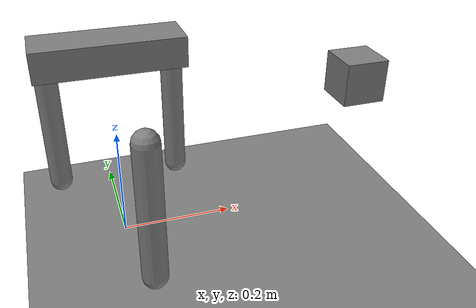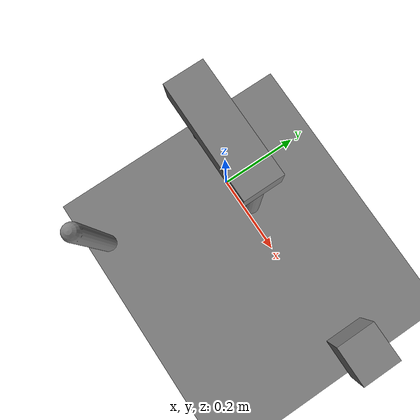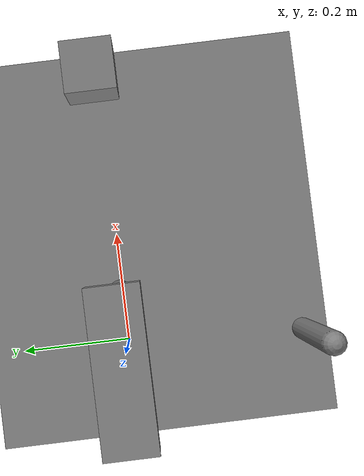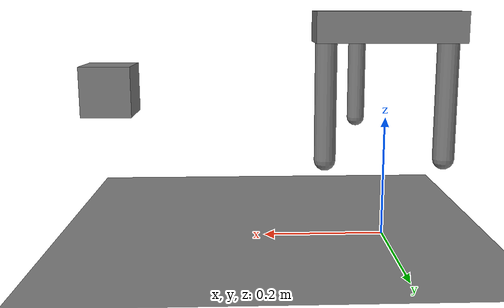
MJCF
<mujoco model="generic_rigid_body_fixture">
  <compiler angle="radian" autolimits="true"/>
  <option timestep="0.001"
          gravity="0 0 -9.81"
          integrator="implicitfast"
          cone="elliptic"
          iterations="100"
          tolerance="1e-10"/>
  <default>
    <joint damping="0.02" armature="0.001"/>
    <geom friction="0.9 0.01 0.001"
          solref="0.01 1"
          solimp="0.95 0.99 0.001"/>
  </default>

  <worldbody>
    <geom name="ground" type="plane" size="1 1 0.1"/>

    <!-- Independent contact fixture: a known box falls and settles on ground. -->
    <body name="drop_body" pos="0.45 0 0.25">
      <freejoint name="drop_free"/>
      <geom name="drop_geom" type="box" size="0.04 0.04 0.04" mass="0.5"/>
    </body>

    <!-- Independent actuated hinge for command/state and integration tests. -->
    <body name="drive_body" pos="0 -0.3 0.35">
      <joint name="drive_joint"
             type="hinge"
             axis="0 1 0"
             range="-1.2 1.2"/>
      <geom type="capsule"
            fromto="0 0 0 0 0 -0.2"
            size="0.018"
            mass="0.25"
            contype="0"
            conaffinity="0"/>
    </body>

    <!-- Two hinged branches plus a connect equality form a kinematic loop. -->
    <body name="base" pos="0 0 0.35">
      <geom type="box"
            size="0.12 0.04 0.025"
            mass="1"
            contype="0"
            conaffinity="0"/>
      <body name="arm_a" pos="-0.1 0 0">
        <joint name="joint_a"
               type="hinge"
               axis="0 1 0"
               range="-1 1"/>
        <geom type="capsule"
              fromto="0 0 0 0 0 -0.22"
              size="0.018"
              mass="0.2"
              contype="0"
              conaffinity="0"/>
      </body>
      <body name="arm_b" pos="0.1 0 0">
        <joint name="joint_b"
               type="hinge"
               axis="0 1 0"
               range="-1 1"/>
        <geom type="capsule"
              fromto="0 0 0 0 0 -0.22"
              size="0.018"
              mass="0.2"
              contype="0"
              conaffinity="0"/>
      </body>
    </body>
  </worldbody>

  <equality>
    <connect name="loop_closure"
             body1="arm_a"
             body2="arm_b"
             anchor="0 0 0.15"
             solref="0.002 1"/>
  </equality>

  <actuator>
    <motor name="drive_motor"
           joint="drive_joint"
           gear="1"
           ctrllimited="true"
           ctrlrange="-1 1"/>
    <motor name="loop_motor_a"
           joint="joint_a"
           gear="1"
           ctrllimited="true"
           ctrlrange="-0.1 0.1"/>
    <motor name="loop_motor_b"
           joint="joint_b"
           gear="1"
           ctrllimited="true"
           ctrlrange="-0.1 0.1"/>
  </actuator>
</mujoco>
